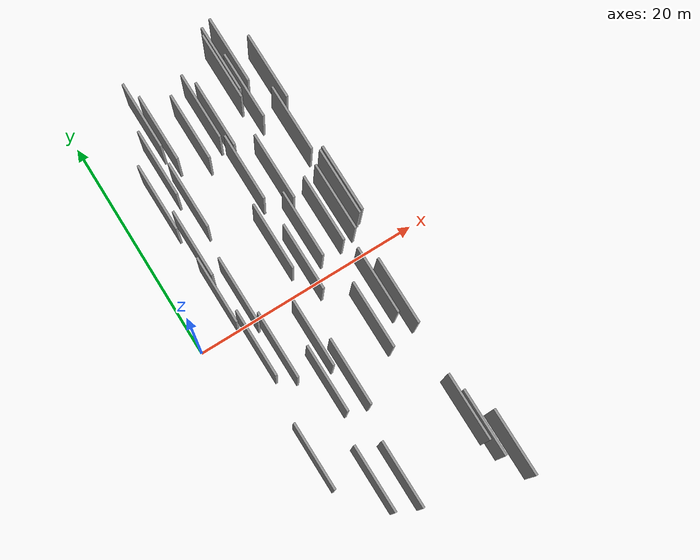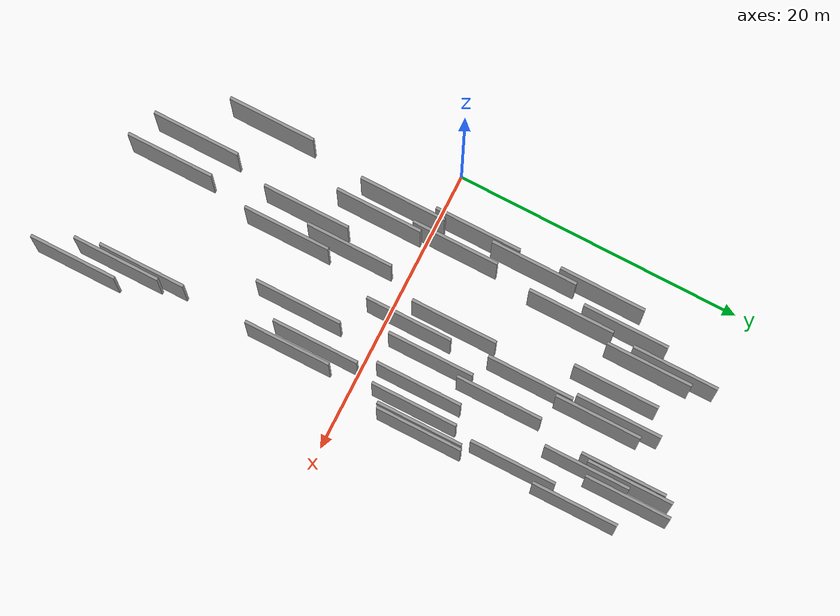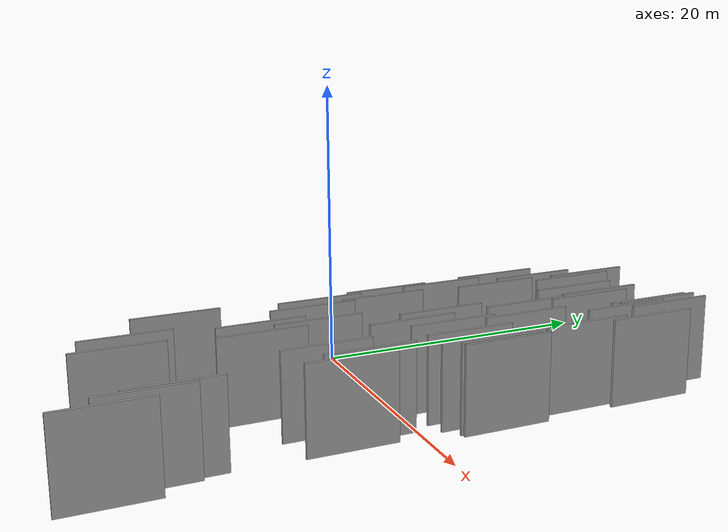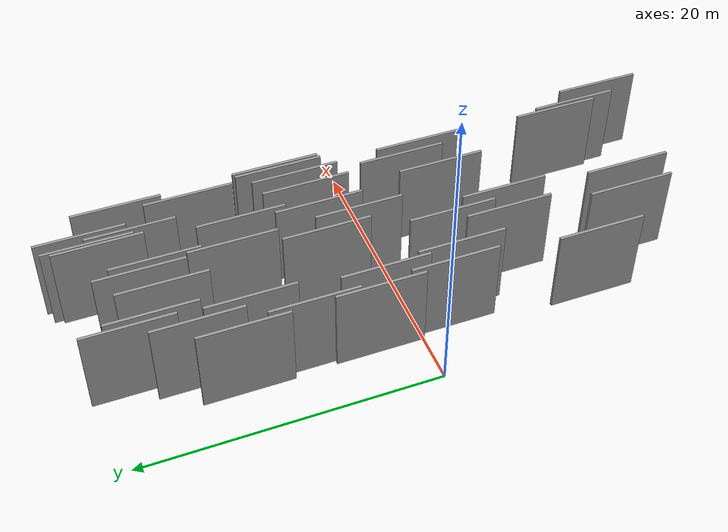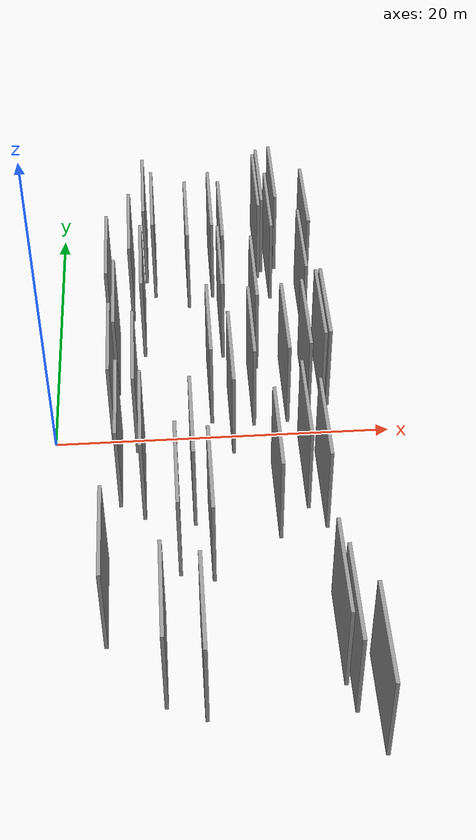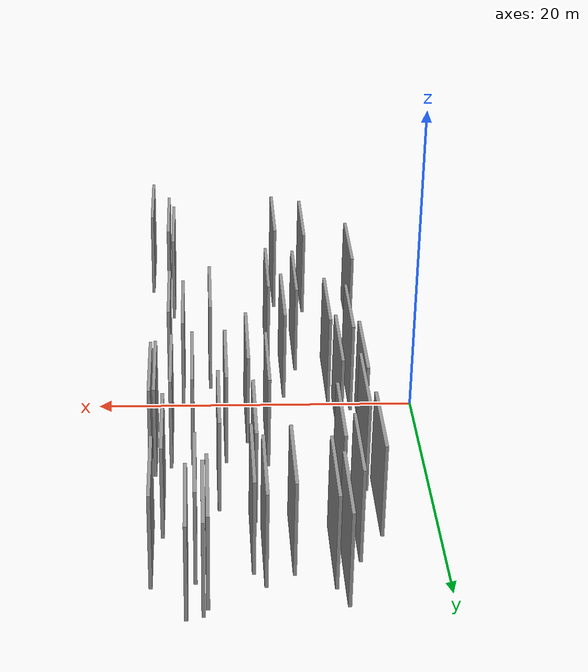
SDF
<sdf version="1.6">
 <world name="default">
  <scene>
   <sky><clouds><speed>12</speed></clouds></sky>
   <ambient>0.4 0.4 0.4 1</ambient>
   <background>0.7 0.7 0.7 1</background>
   <shadows>1</shadows>
  </scene>
  <gravity>0 0 -9.8066</gravity>
  <magnetic_field>6e-06 2.3e-05 -4.2e-05</magnetic_field>
  <physics default="0" name="default_physics" type="ode">
   <ode>
    <solver>
     <type>quick</type>
     <iters>10</iters>
     <sor>1.0</sor>
     <use_dynamic_moi_rescaling>0</use_dynamic_moi_rescaling>
    </solver>
    <constraints>
     <cfm>0</cfm>
     <erp>0.2</erp>
     <contact_max_correcting_vel>100</contact_max_correcting_vel>
     <contact_surface_layer>0.001</contact_surface_layer>
    </constraints>
   </ode>
   <max_step_size>0.004</max_step_size>
   <real_time_factor>1</real_time_factor>
   <real_time_update_rate>250</real_time_update_rate>
  </physics>
  <light name="sun" type="directional">
   <pose>0 0 10 0 0 0</pose>
   <diffuse>0.8 0.8 0.8 1</diffuse>
   <specular>0.2 0.2 0.2 1</specular>
   <attenuation>
    <range>1000</range>
    <constant>0.9</constant>
    <linear>0.01</linear>
    <quadratic>0.001</quadratic>
   </attenuation>
   <direction>-0.5 0.1 -0.9</direction>
  </light>
  <model name="grey_wall_1">
   <static>1</static>
   <pose>12.8347 -5.1475 0.0 0.000000 0.000000 1.570796</pose>
   <link name="link">
    <pose>0 0 3.00 0 0 0</pose>
    <collision name="collision"><geometry><box><size>6.00 0.2 6.00</size></box></geometry></collision>
    <visual name="visual">
     <cast_shadows>0</cast_shadows>
     <geometry><box><size>6.00 0.2 6.00</size></box></geometry>
     <material>
      <script>
       <uri>model://grey_wall/materials/scripts</uri>
       <uri>model://grey_wall/materials/textures</uri>
       <name>vrc/grey_wall</name>
      </script>
     </material>
    </visual>
   </link>
  </model>
  <model name="grey_wall_2">
   <static>1</static>
   <pose>3.8975 -2.2619 0.0 0.000000 0.000000 1.570796</pose>
   <link name="link">
    <pose>0 0 3.00 0 0 0</pose>
    <collision name="collision"><geometry><box><size>6.00 0.2 6.00</size></box></geometry></collision>
    <visual name="visual">
     <cast_shadows>0</cast_shadows>
     <geometry><box><size>6.00 0.2 6.00</size></box></geometry>
     <material>
      <script>
       <uri>model://grey_wall/materials/scripts</uri>
       <uri>model://grey_wall/materials/textures</uri>
       <name>vrc/grey_wall</name>
      </script>
     </material>
    </visual>
   </link>
  </model>
  <model name="grey_wall_3">
   <static>1</static>
   <pose>10.6018 1.6065 0.0 0.000000 0.000000 1.570796</pose>
   <link name="link">
    <pose>0 0 3.00 0 0 0</pose>
    <collision name="collision"><geometry><box><size>6.00 0.2 6.00</size></box></geometry></collision>
    <visual name="visual">
     <cast_shadows>0</cast_shadows>
     <geometry><box><size>6.00 0.2 6.00</size></box></geometry>
     <material>
      <script>
       <uri>model://grey_wall/materials/scripts</uri>
       <uri>model://grey_wall/materials/textures</uri>
       <name>vrc/grey_wall</name>
      </script>
     </material>
    </visual>
   </link>
  </model>
  <model name="grey_wall_4">
   <static>1</static>
   <pose>14.0080 4.0564 0.0 0.000000 0.000000 1.570796</pose>
   <link name="link">
    <pose>0 0 3.00 0 0 0</pose>
    <collision name="collision"><geometry><box><size>6.00 0.2 6.00</size></box></geometry></collision>
    <visual name="visual">
     <cast_shadows>0</cast_shadows>
     <geometry><box><size>6.00 0.2 6.00</size></box></geometry>
     <material>
      <script>
       <uri>model://grey_wall/materials/scripts</uri>
       <uri>model://grey_wall/materials/textures</uri>
       <name>vrc/grey_wall</name>
      </script>
     </material>
    </visual>
   </link>
  </model>
  <model name="grey_wall_5">
   <static>1</static>
   <pose>16.2582 5.2487 0.0 0.000000 0.000000 1.570796</pose>
   <link name="link">
    <pose>0 0 3.00 0 0 0</pose>
    <collision name="collision"><geometry><box><size>6.00 0.2 6.00</size></box></geometry></collision>
    <visual name="visual">
     <cast_shadows>0</cast_shadows>
     <geometry><box><size>6.00 0.2 6.00</size></box></geometry>
     <material>
      <script>
       <uri>model://grey_wall/materials/scripts</uri>
       <uri>model://grey_wall/materials/textures</uri>
       <name>vrc/grey_wall</name>
      </script>
     </material>
    </visual>
   </link>
  </model>
  <model name="grey_wall_6">
   <static>1</static>
   <pose>15.3037 -15.0925 0.0 0.000000 0.000000 1.570796</pose>
   <link name="link">
    <pose>0 0 3.00 0 0 0</pose>
    <collision name="collision"><geometry><box><size>6.00 0.2 6.00</size></box></geometry></collision>
    <visual name="visual">
     <cast_shadows>0</cast_shadows>
     <geometry><box><size>6.00 0.2 6.00</size></box></geometry>
     <material>
      <script>
       <uri>model://grey_wall/materials/scripts</uri>
       <uri>model://grey_wall/materials/textures</uri>
       <name>vrc/grey_wall</name>
      </script>
     </material>
    </visual>
   </link>
  </model>
  <model name="grey_wall_7">
   <static>1</static>
   <pose>14.3897 19.1042 0.0 0.000000 0.000000 1.570796</pose>
   <link name="link">
    <pose>0 0 3.00 0 0 0</pose>
    <collision name="collision"><geometry><box><size>6.00 0.2 6.00</size></box></geometry></collision>
    <visual name="visual">
     <cast_shadows>0</cast_shadows>
     <geometry><box><size>6.00 0.2 6.00</size></box></geometry>
     <material>
      <script>
       <uri>model://grey_wall/materials/scripts</uri>
       <uri>model://grey_wall/materials/textures</uri>
       <name>vrc/grey_wall</name>
      </script>
     </material>
    </visual>
   </link>
  </model>
  <model name="grey_wall_8">
   <static>1</static>
   <pose>6.2374 16.5095 0.0 0.000000 0.000000 1.570796</pose>
   <link name="link">
    <pose>0 0 3.00 0 0 0</pose>
    <collision name="collision"><geometry><box><size>6.00 0.2 6.00</size></box></geometry></collision>
    <visual name="visual">
     <cast_shadows>0</cast_shadows>
     <geometry><box><size>6.00 0.2 6.00</size></box></geometry>
     <material>
      <script>
       <uri>model://grey_wall/materials/scripts</uri>
       <uri>model://grey_wall/materials/textures</uri>
       <name>vrc/grey_wall</name>
      </script>
     </material>
    </visual>
   </link>
  </model>
  <model name="grey_wall_9">
   <static>1</static>
   <pose>12.4691 9.0026 0.0 0.000000 0.000000 1.570796</pose>
   <link name="link">
    <pose>0 0 3.00 0 0 0</pose>
    <collision name="collision"><geometry><box><size>6.00 0.2 6.00</size></box></geometry></collision>
    <visual name="visual">
     <cast_shadows>0</cast_shadows>
     <geometry><box><size>6.00 0.2 6.00</size></box></geometry>
     <material>
      <script>
       <uri>model://grey_wall/materials/scripts</uri>
       <uri>model://grey_wall/materials/textures</uri>
       <name>vrc/grey_wall</name>
      </script>
     </material>
    </visual>
   </link>
  </model>
  <model name="grey_wall_10">
   <static>1</static>
   <pose>10.4148 10.1856 0.0 0.000000 0.000000 1.570796</pose>
   <link name="link">
    <pose>0 0 3.00 0 0 0</pose>
    <collision name="collision"><geometry><box><size>6.00 0.2 6.00</size></box></geometry></collision>
    <visual name="visual">
     <cast_shadows>0</cast_shadows>
     <geometry><box><size>6.00 0.2 6.00</size></box></geometry>
     <material>
      <script>
       <uri>model://grey_wall/materials/scripts</uri>
       <uri>model://grey_wall/materials/textures</uri>
       <name>vrc/grey_wall</name>
      </script>
     </material>
    </visual>
   </link>
  </model>
  <model name="grey_wall_11">
   <static>1</static>
   <pose>10.0498 16.2816 0.0 0.000000 0.000000 1.570796</pose>
   <link name="link">
    <pose>0 0 3.00 0 0 0</pose>
    <collision name="collision"><geometry><box><size>6.00 0.2 6.00</size></box></geometry></collision>
    <visual name="visual">
     <cast_shadows>0</cast_shadows>
     <geometry><box><size>6.00 0.2 6.00</size></box></geometry>
     <material>
      <script>
       <uri>model://grey_wall/materials/scripts</uri>
       <uri>model://grey_wall/materials/textures</uri>
       <name>vrc/grey_wall</name>
      </script>
     </material>
    </visual>
   </link>
  </model>
  <model name="grey_wall_12">
   <static>1</static>
   <pose>4.7305 14.0890 0.0 0.000000 0.000000 1.570796</pose>
   <link name="link">
    <pose>0 0 3.00 0 0 0</pose>
    <collision name="collision"><geometry><box><size>6.00 0.2 6.00</size></box></geometry></collision>
    <visual name="visual">
     <cast_shadows>0</cast_shadows>
     <geometry><box><size>6.00 0.2 6.00</size></box></geometry>
     <material>
      <script>
       <uri>model://grey_wall/materials/scripts</uri>
       <uri>model://grey_wall/materials/textures</uri>
       <name>vrc/grey_wall</name>
      </script>
     </material>
    </visual>
   </link>
  </model>
  <model name="grey_wall_13">
   <static>1</static>
   <pose>5.4506 10.5666 0.0 0.000000 0.000000 1.570796</pose>
   <link name="link">
    <pose>0 0 3.00 0 0 0</pose>
    <collision name="collision"><geometry><box><size>6.00 0.2 6.00</size></box></geometry></collision>
    <visual name="visual">
     <cast_shadows>0</cast_shadows>
     <geometry><box><size>6.00 0.2 6.00</size></box></geometry>
     <material>
      <script>
       <uri>model://grey_wall/materials/scripts</uri>
       <uri>model://grey_wall/materials/textures</uri>
       <name>vrc/grey_wall</name>
      </script>
     </material>
    </visual>
   </link>
  </model>
  <model name="grey_wall_14">
   <static>1</static>
   <pose>9.4307 4.2425 0.0 0.000000 0.000000 1.570796</pose>
   <link name="link">
    <pose>0 0 3.00 0 0 0</pose>
    <collision name="collision"><geometry><box><size>6.00 0.2 6.00</size></box></geometry></collision>
    <visual name="visual">
     <cast_shadows>0</cast_shadows>
     <geometry><box><size>6.00 0.2 6.00</size></box></geometry>
     <material>
      <script>
       <uri>model://grey_wall/materials/scripts</uri>
       <uri>model://grey_wall/materials/textures</uri>
       <name>vrc/grey_wall</name>
      </script>
     </material>
    </visual>
   </link>
  </model>
  <model name="grey_wall_15">
   <static>1</static>
   <pose>8.0966 -3.9222 0.0 0.000000 0.000000 1.570796</pose>
   <link name="link">
    <pose>0 0 3.00 0 0 0</pose>
    <collision name="collision"><geometry><box><size>6.00 0.2 6.00</size></box></geometry></collision>
    <visual name="visual">
     <cast_shadows>0</cast_shadows>
     <geometry><box><size>6.00 0.2 6.00</size></box></geometry>
     <material>
      <script>
       <uri>model://grey_wall/materials/scripts</uri>
       <uri>model://grey_wall/materials/textures</uri>
       <name>vrc/grey_wall</name>
      </script>
     </material>
    </visual>
   </link>
  </model>
  <model name="grey_wall_16">
   <static>1</static>
   <pose>13.2210 18.2051 0.0 0.000000 0.000000 1.570796</pose>
   <link name="link">
    <pose>0 0 3.00 0 0 0</pose>
    <collision name="collision"><geometry><box><size>6.00 0.2 6.00</size></box></geometry></collision>
    <visual name="visual">
     <cast_shadows>0</cast_shadows>
     <geometry><box><size>6.00 0.2 6.00</size></box></geometry>
     <material>
      <script>
       <uri>model://grey_wall/materials/scripts</uri>
       <uri>model://grey_wall/materials/textures</uri>
       <name>vrc/grey_wall</name>
      </script>
     </material>
    </visual>
   </link>
  </model>
  <model name="grey_wall_17">
   <static>1</static>
   <pose>15.3032 4.3893 0.0 0.000000 0.000000 1.570796</pose>
   <link name="link">
    <pose>0 0 3.00 0 0 0</pose>
    <collision name="collision"><geometry><box><size>6.00 0.2 6.00</size></box></geometry></collision>
    <visual name="visual">
     <cast_shadows>0</cast_shadows>
     <geometry><box><size>6.00 0.2 6.00</size></box></geometry>
     <material>
      <script>
       <uri>model://grey_wall/materials/scripts</uri>
       <uri>model://grey_wall/materials/textures</uri>
       <name>vrc/grey_wall</name>
      </script>
     </material>
    </visual>
   </link>
  </model>
  <model name="grey_wall_18">
   <static>1</static>
   <pose>16.5487 5.3655 0.0 0.000000 0.000000 1.570796</pose>
   <link name="link">
    <pose>0 0 3.00 0 0 0</pose>
    <collision name="collision"><geometry><box><size>6.00 0.2 6.00</size></box></geometry></collision>
    <visual name="visual">
     <cast_shadows>0</cast_shadows>
     <geometry><box><size>6.00 0.2 6.00</size></box></geometry>
     <material>
      <script>
       <uri>model://grey_wall/materials/scripts</uri>
       <uri>model://grey_wall/materials/textures</uri>
       <name>vrc/grey_wall</name>
      </script>
     </material>
    </visual>
   </link>
  </model>
  <model name="grey_wall_19">
   <static>1</static>
   <pose>13.8817 15.9402 0.0 0.000000 0.000000 1.570796</pose>
   <link name="link">
    <pose>0 0 3.00 0 0 0</pose>
    <collision name="collision"><geometry><box><size>6.00 0.2 6.00</size></box></geometry></collision>
    <visual name="visual">
     <cast_shadows>0</cast_shadows>
     <geometry><box><size>6.00 0.2 6.00</size></box></geometry>
     <material>
      <script>
       <uri>model://grey_wall/materials/scripts</uri>
       <uri>model://grey_wall/materials/textures</uri>
       <name>vrc/grey_wall</name>
      </script>
     </material>
    </visual>
   </link>
  </model>
  <model name="grey_wall_20">
   <static>1</static>
   <pose>6.1719 -15.9493 0.0 0.000000 0.000000 1.570796</pose>
   <link name="link">
    <pose>0 0 3.00 0 0 0</pose>
    <collision name="collision"><geometry><box><size>6.00 0.2 6.00</size></box></geometry></collision>
    <visual name="visual">
     <cast_shadows>0</cast_shadows>
     <geometry><box><size>6.00 0.2 6.00</size></box></geometry>
     <material>
      <script>
       <uri>model://grey_wall/materials/scripts</uri>
       <uri>model://grey_wall/materials/textures</uri>
       <name>vrc/grey_wall</name>
      </script>
     </material>
    </visual>
   </link>
  </model>
  <model name="grey_wall_21">
   <static>1</static>
   <pose>14.5956 -3.0212 0.0 0.000000 0.000000 1.570796</pose>
   <link name="link">
    <pose>0 0 3.00 0 0 0</pose>
    <collision name="collision"><geometry><box><size>6.00 0.2 6.00</size></box></geometry></collision>
    <visual name="visual">
     <cast_shadows>0</cast_shadows>
     <geometry><box><size>6.00 0.2 6.00</size></box></geometry>
     <material>
      <script>
       <uri>model://grey_wall/materials/scripts</uri>
       <uri>model://grey_wall/materials/textures</uri>
       <name>vrc/grey_wall</name>
      </script>
     </material>
    </visual>
   </link>
  </model>
  <model name="grey_wall_22">
   <static>1</static>
   <pose>7.1515 -7.5120 0.0 0.000000 0.000000 1.570796</pose>
   <link name="link">
    <pose>0 0 3.00 0 0 0</pose>
    <collision name="collision"><geometry><box><size>6.00 0.2 6.00</size></box></geometry></collision>
    <visual name="visual">
     <cast_shadows>0</cast_shadows>
     <geometry><box><size>6.00 0.2 6.00</size></box></geometry>
     <material>
      <script>
       <uri>model://grey_wall/materials/scripts</uri>
       <uri>model://grey_wall/materials/textures</uri>
       <name>vrc/grey_wall</name>
      </script>
     </material>
    </visual>
   </link>
  </model>
  <model name="grey_wall_23">
   <static>1</static>
   <pose>11.9656 3.8660 0.0 0.000000 0.000000 1.570796</pose>
   <link name="link">
    <pose>0 0 3.00 0 0 0</pose>
    <collision name="collision"><geometry><box><size>6.00 0.2 6.00</size></box></geometry></collision>
    <visual name="visual">
     <cast_shadows>0</cast_shadows>
     <geometry><box><size>6.00 0.2 6.00</size></box></geometry>
     <material>
      <script>
       <uri>model://grey_wall/materials/scripts</uri>
       <uri>model://grey_wall/materials/textures</uri>
       <name>vrc/grey_wall</name>
      </script>
     </material>
    </visual>
   </link>
  </model>
  <model name="grey_wall_24">
   <static>1</static>
   <pose>5.2564 -3.2837 0.0 0.000000 0.000000 1.570796</pose>
   <link name="link">
    <pose>0 0 3.00 0 0 0</pose>
    <collision name="collision"><geometry><box><size>6.00 0.2 6.00</size></box></geometry></collision>
    <visual name="visual">
     <cast_shadows>0</cast_shadows>
     <geometry><box><size>6.00 0.2 6.00</size></box></geometry>
     <material>
      <script>
       <uri>model://grey_wall/materials/scripts</uri>
       <uri>model://grey_wall/materials/textures</uri>
       <name>vrc/grey_wall</name>
      </script>
     </material>
    </visual>
   </link>
  </model>
  <model name="grey_wall_25">
   <static>1</static>
   <pose>8.1668 -16.7894 0.0 0.000000 0.000000 1.570796</pose>
   <link name="link">
    <pose>0 0 3.00 0 0 0</pose>
    <collision name="collision"><geometry><box><size>6.00 0.2 6.00</size></box></geometry></collision>
    <visual name="visual">
     <cast_shadows>0</cast_shadows>
     <geometry><box><size>6.00 0.2 6.00</size></box></geometry>
     <material>
      <script>
       <uri>model://grey_wall/materials/scripts</uri>
       <uri>model://grey_wall/materials/textures</uri>
       <name>vrc/grey_wall</name>
      </script>
     </material>
    </visual>
   </link>
  </model>
  <model name="grey_wall_26">
   <static>1</static>
   <pose>15.7303 11.6315 0.0 0.000000 0.000000 1.570796</pose>
   <link name="link">
    <pose>0 0 3.00 0 0 0</pose>
    <collision name="collision"><geometry><box><size>6.00 0.2 6.00</size></box></geometry></collision>
    <visual name="visual">
     <cast_shadows>0</cast_shadows>
     <geometry><box><size>6.00 0.2 6.00</size></box></geometry>
     <material>
      <script>
       <uri>model://grey_wall/materials/scripts</uri>
       <uri>model://grey_wall/materials/textures</uri>
       <name>vrc/grey_wall</name>
      </script>
     </material>
    </visual>
   </link>
  </model>
  <model name="grey_wall_27">
   <static>1</static>
   <pose>4.8920 2.0136 0.0 0.000000 0.000000 1.570796</pose>
   <link name="link">
    <pose>0 0 3.00 0 0 0</pose>
    <collision name="collision"><geometry><box><size>6.00 0.2 6.00</size></box></geometry></collision>
    <visual name="visual">
     <cast_shadows>0</cast_shadows>
     <geometry><box><size>6.00 0.2 6.00</size></box></geometry>
     <material>
      <script>
       <uri>model://grey_wall/materials/scripts</uri>
       <uri>model://grey_wall/materials/textures</uri>
       <name>vrc/grey_wall</name>
      </script>
     </material>
    </visual>
   </link>
  </model>
  <model name="grey_wall_28">
   <static>1</static>
   <pose>3.7537 7.0621 0.0 0.000000 0.000000 1.570796</pose>
   <link name="link">
    <pose>0 0 3.00 0 0 0</pose>
    <collision name="collision"><geometry><box><size>6.00 0.2 6.00</size></box></geometry></collision>
    <visual name="visual">
     <cast_shadows>0</cast_shadows>
     <geometry><box><size>6.00 0.2 6.00</size></box></geometry>
     <material>
      <script>
       <uri>model://grey_wall/materials/scripts</uri>
       <uri>model://grey_wall/materials/textures</uri>
       <name>vrc/grey_wall</name>
      </script>
     </material>
    </visual>
   </link>
  </model>
  <model name="grey_wall_29">
   <static>1</static>
   <pose>10.6884 15.1287 0.0 0.000000 0.000000 1.570796</pose>
   <link name="link">
    <pose>0 0 3.00 0 0 0</pose>
    <collision name="collision"><geometry><box><size>6.00 0.2 6.00</size></box></geometry></collision>
    <visual name="visual">
     <cast_shadows>0</cast_shadows>
     <geometry><box><size>6.00 0.2 6.00</size></box></geometry>
     <material>
      <script>
       <uri>model://grey_wall/materials/scripts</uri>
       <uri>model://grey_wall/materials/textures</uri>
       <name>vrc/grey_wall</name>
      </script>
     </material>
    </visual>
   </link>
  </model>
  <model name="grey_wall_30">
   <static>1</static>
   <pose>16.8361 -19.2339 0.0 0.000000 0.000000 1.570796</pose>
   <link name="link">
    <pose>0 0 3.00 0 0 0</pose>
    <collision name="collision"><geometry><box><size>6.00 0.2 6.00</size></box></geometry></collision>
    <visual name="visual">
     <cast_shadows>0</cast_shadows>
     <geometry><box><size>6.00 0.2 6.00</size></box></geometry>
     <material>
      <script>
       <uri>model://grey_wall/materials/scripts</uri>
       <uri>model://grey_wall/materials/textures</uri>
       <name>vrc/grey_wall</name>
      </script>
     </material>
    </visual>
   </link>
  </model>
  <model name="grey_wall_31">
   <static>1</static>
   <pose>13.4694 18.8005 0.0 0.000000 0.000000 1.570796</pose>
   <link name="link">
    <pose>0 0 3.00 0 0 0</pose>
    <collision name="collision"><geometry><box><size>6.00 0.2 6.00</size></box></geometry></collision>
    <visual name="visual">
     <cast_shadows>0</cast_shadows>
     <geometry><box><size>6.00 0.2 6.00</size></box></geometry>
     <material>
      <script>
       <uri>model://grey_wall/materials/scripts</uri>
       <uri>model://grey_wall/materials/textures</uri>
       <name>vrc/grey_wall</name>
      </script>
     </material>
    </visual>
   </link>
  </model>
  <model name="grey_wall_32">
   <static>1</static>
   <pose>16.3159 16.3068 0.0 0.000000 0.000000 1.570796</pose>
   <link name="link">
    <pose>0 0 3.00 0 0 0</pose>
    <collision name="collision"><geometry><box><size>6.00 0.2 6.00</size></box></geometry></collision>
    <visual name="visual">
     <cast_shadows>0</cast_shadows>
     <geometry><box><size>6.00 0.2 6.00</size></box></geometry>
     <material>
      <script>
       <uri>model://grey_wall/materials/scripts</uri>
       <uri>model://grey_wall/materials/textures</uri>
       <name>vrc/grey_wall</name>
      </script>
     </material>
    </visual>
   </link>
  </model>
  <model name="grey_wall_33">
   <static>1</static>
   <pose>8.4502 15.2673 0.0 0.000000 0.000000 1.570796</pose>
   <link name="link">
    <pose>0 0 3.00 0 0 0</pose>
    <collision name="collision"><geometry><box><size>6.00 0.2 6.00</size></box></geometry></collision>
    <visual name="visual">
     <cast_shadows>0</cast_shadows>
     <geometry><box><size>6.00 0.2 6.00</size></box></geometry>
     <material>
      <script>
       <uri>model://grey_wall/materials/scripts</uri>
       <uri>model://grey_wall/materials/textures</uri>
       <name>vrc/grey_wall</name>
      </script>
     </material>
    </visual>
   </link>
  </model>
  <model name="grey_wall_34">
   <static>1</static>
   <pose>15.5058 -4.5600 0.0 0.000000 0.000000 1.570796</pose>
   <link name="link">
    <pose>0 0 3.00 0 0 0</pose>
    <collision name="collision"><geometry><box><size>6.00 0.2 6.00</size></box></geometry></collision>
    <visual name="visual">
     <cast_shadows>0</cast_shadows>
     <geometry><box><size>6.00 0.2 6.00</size></box></geometry>
     <material>
      <script>
       <uri>model://grey_wall/materials/scripts</uri>
       <uri>model://grey_wall/materials/textures</uri>
       <name>vrc/grey_wall</name>
      </script>
     </material>
    </visual>
   </link>
  </model>
  <model name="grey_wall_35">
   <static>1</static>
   <pose>15.6578 -16.7419 0.0 0.000000 0.000000 1.570796</pose>
   <link name="link">
    <pose>0 0 3.00 0 0 0</pose>
    <collision name="collision"><geometry><box><size>6.00 0.2 6.00</size></box></geometry></collision>
    <visual name="visual">
     <cast_shadows>0</cast_shadows>
     <geometry><box><size>6.00 0.2 6.00</size></box></geometry>
     <material>
      <script>
       <uri>model://grey_wall/materials/scripts</uri>
       <uri>model://grey_wall/materials/textures</uri>
       <name>vrc/grey_wall</name>
      </script>
     </material>
    </visual>
   </link>
  </model>
  <model name="grey_wall_36">
   <static>1</static>
   <pose>3.4668 2.8964 0.0 0.000000 0.000000 1.570796</pose>
   <link name="link">
    <pose>0 0 3.00 0 0 0</pose>
    <collision name="collision"><geometry><box><size>6.00 0.2 6.00</size></box></geometry></collision>
    <visual name="visual">
     <cast_shadows>0</cast_shadows>
     <geometry><box><size>6.00 0.2 6.00</size></box></geometry>
     <material>
      <script>
       <uri>model://grey_wall/materials/scripts</uri>
       <uri>model://grey_wall/materials/textures</uri>
       <name>vrc/grey_wall</name>
      </script>
     </material>
    </visual>
   </link>
  </model>
  <model name="grey_wall_37">
   <static>1</static>
   <pose>3.1301 -12.0669 0.0 0.000000 0.000000 1.570796</pose>
   <link name="link">
    <pose>0 0 3.00 0 0 0</pose>
    <collision name="collision"><geometry><box><size>6.00 0.2 6.00</size></box></geometry></collision>
    <visual name="visual">
     <cast_shadows>0</cast_shadows>
     <geometry><box><size>6.00 0.2 6.00</size></box></geometry>
     <material>
      <script>
       <uri>model://grey_wall/materials/scripts</uri>
       <uri>model://grey_wall/materials/textures</uri>
       <name>vrc/grey_wall</name>
      </script>
     </material>
    </visual>
   </link>
  </model>
  <model name="grey_wall_38">
   <static>1</static>
   <pose>3.2895 11.6909 0.0 0.000000 0.000000 1.570796</pose>
   <link name="link">
    <pose>0 0 3.00 0 0 0</pose>
    <collision name="collision"><geometry><box><size>6.00 0.2 6.00</size></box></geometry></collision>
    <visual name="visual">
     <cast_shadows>0</cast_shadows>
     <geometry><box><size>6.00 0.2 6.00</size></box></geometry>
     <material>
      <script>
       <uri>model://grey_wall/materials/scripts</uri>
       <uri>model://grey_wall/materials/textures</uri>
       <name>vrc/grey_wall</name>
      </script>
     </material>
    </visual>
   </link>
  </model>
  <model name="grey_wall_39">
   <static>1</static>
   <pose>5.6716 18.0833 0.0 0.000000 0.000000 1.570796</pose>
   <link name="link">
    <pose>0 0 3.00 0 0 0</pose>
    <collision name="collision"><geometry><box><size>6.00 0.2 6.00</size></box></geometry></collision>
    <visual name="visual">
     <cast_shadows>0</cast_shadows>
     <geometry><box><size>6.00 0.2 6.00</size></box></geometry>
     <material>
      <script>
       <uri>model://grey_wall/materials/scripts</uri>
       <uri>model://grey_wall/materials/textures</uri>
       <name>vrc/grey_wall</name>
      </script>
     </material>
    </visual>
   </link>
  </model>
  <model name="grey_wall_40">
   <static>1</static>
   <pose>8.9647 -7.9913 0.0 0.000000 0.000000 1.570796</pose>
   <link name="link">
    <pose>0 0 3.00 0 0 0</pose>
    <collision name="collision"><geometry><box><size>6.00 0.2 6.00</size></box></geometry></collision>
    <visual name="visual">
     <cast_shadows>0</cast_shadows>
     <geometry><box><size>6.00 0.2 6.00</size></box></geometry>
     <material>
      <script>
       <uri>model://grey_wall/materials/scripts</uri>
       <uri>model://grey_wall/materials/textures</uri>
       <name>vrc/grey_wall</name>
      </script>
     </material>
    </visual>
   </link>
  </model>
 </world>
</sdf>
